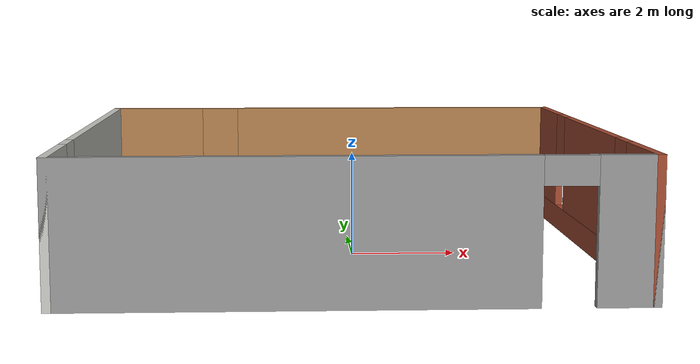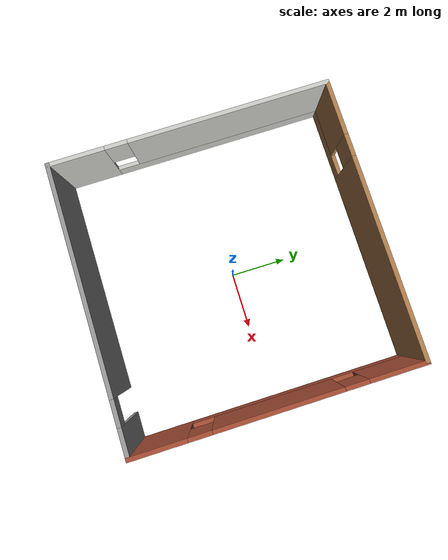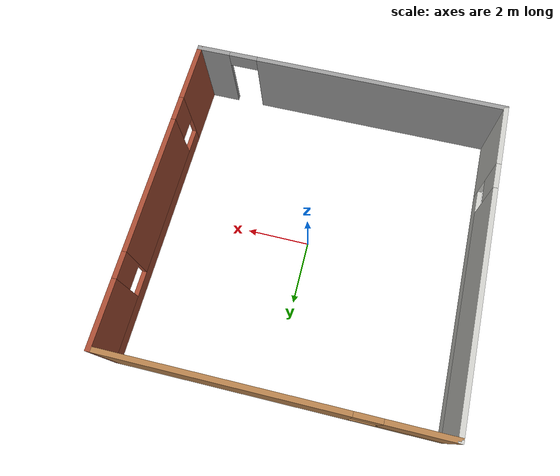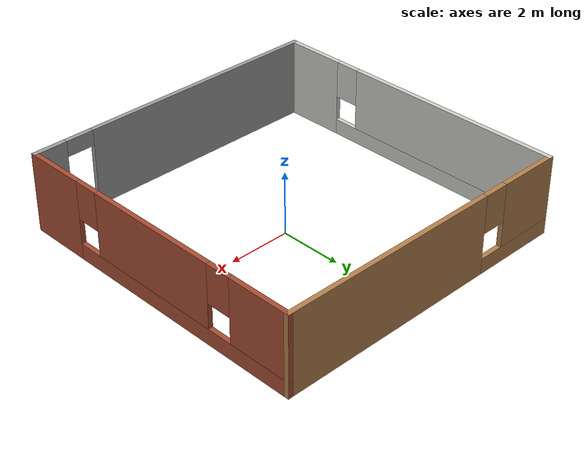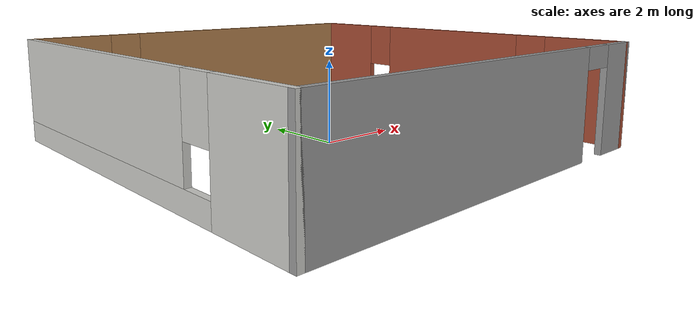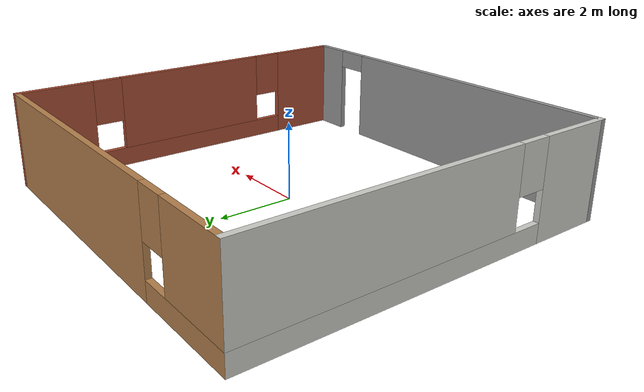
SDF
<?xml version='1.0'?>
<sdf version='1.6'>
  <model name='10_10_pattern_test'>
    <pose frame=''>-0.204369 0.054081 0 0 -0 0</pose>
    <link name='Wall_3'>
      <pose frame=''>-4.925 0 0 0 -0 1.5708</pose>
      <visual name='Wall_3_Visual_0'>
        <pose frame=''>-3.98071 0 1.25 0 -0 0</pose>
        <geometry>
          <box>
            <size>2.03858 0.15 2.5</size>
          </box>
        </geometry>
        <material>
          <script>
            <uri>file://media/materials/scripts/gazebo.material</uri>
            <name>Gazebo/CeilingTiled</name>
          </script>
          <ambient>1 1 1 1</ambient>
        </material>
      </visual>
      <collision name='Wall_3_Collision_0'>
        <geometry>
          <box>
            <size>2.03858 0.15 2.5</size>
          </box>
        </geometry>
        <pose frame=''>-3.98071 0 1.25 0 -0 0</pose>
      </collision>
      <visual name='Wall_3_Visual_1'>
        <pose frame=''>1.01929 0 0.25 0 -0 0</pose>
        <geometry>
          <box>
            <size>7.96142 0.15 0.5</size>
          </box>
        </geometry>
        <material>
          <script>
            <uri>file://media/materials/scripts/gazebo.material</uri>
            <name>Gazebo/CeilingTiled</name>
          </script>
          <ambient>1 1 1 1</ambient>
        </material>
      </visual>
      <collision name='Wall_3_Collision_1'>
        <geometry>
          <box>
            <size>7.96142 0.15 0.5</size>
          </box>
        </geometry>
        <pose frame=''>1.01929 0 0.25 0 -0 0</pose>
      </collision>
      <visual name='Wall_3_Visual_2'>
        <pose frame=''>1.41929 0 1.5 0 -0 0</pose>
        <geometry>
          <box>
            <size>7.16142 0.15 2</size>
          </box>
        </geometry>
        <material>
          <script>
            <uri>file://media/materials/scripts/gazebo.material</uri>
            <name>Gazebo/CeilingTiled</name>
          </script>
          <ambient>1 1 1 1</ambient>
        </material>
      </visual>
      <collision name='Wall_3_Collision_2'>
        <geometry>
          <box>
            <size>7.16142 0.15 2</size>
          </box>
        </geometry>
        <pose frame=''>1.41929 0 1.5 0 -0 0</pose>
      </collision>
      <visual name='Wall_3_Visual_3'>
        <pose frame=''>-2.56142 0 1.9 0 -0 0</pose>
        <geometry>
          <box>
            <size>0.8 0.15 1.2</size>
          </box>
        </geometry>
        <material>
          <script>
            <uri>file://media/materials/scripts/gazebo.material</uri>
            <name>Gazebo/CeilingTiled</name>
          </script>
          <ambient>1 1 1 1</ambient>
        </material>
      </visual>
      <collision name='Wall_3_Collision_3'>
        <geometry>
          <box>
            <size>0.8 0.15 1.2</size>
          </box>
        </geometry>
        <pose frame=''>-2.56142 0 1.9 0 -0 0</pose>
      </collision>
    </link>
    <link name='Wall_5'>
      <pose frame=''>0 -4.925 0 0 -0 0</pose>
      <visual name='Wall_5_Visual_0'>
        <pose frame=''>-0.986022 0 1.25 0 -0 0</pose>
        <geometry>
          <box>
            <size>8.02796 0.15 2.5</size>
          </box>
        </geometry>
        <material>
          <script>
            <uri>file://media/materials/scripts/gazebo.material</uri>
            <name>Gazebo/Grey</name>
          </script>
          <ambient>1 1 1 1</ambient>
        </material>
      </visual>
      <collision name='Wall_5_Collision_0'>
        <geometry>
          <box>
            <size>8.02796 0.15 2.5</size>
          </box>
        </geometry>
        <pose frame=''>-0.986022 0 1.25 0 -0 0</pose>
      </collision>
      <visual name='Wall_5_Visual_1'>
        <pose frame=''>4.46398 0 1.25 0 -0 0</pose>
        <geometry>
          <box>
            <size>1.07204 0.15 2.5</size>
          </box>
        </geometry>
        <material>
          <script>
            <uri>file://media/materials/scripts/gazebo.material</uri>
            <name>Gazebo/Grey</name>
          </script>
          <ambient>1 1 1 1</ambient>
        </material>
      </visual>
      <collision name='Wall_5_Collision_1'>
        <geometry>
          <box>
            <size>1.07204 0.15 2.5</size>
          </box>
        </geometry>
        <pose frame=''>4.46398 0 1.25 0 -0 0</pose>
      </collision>
      <visual name='Wall_5_Visual_2'>
        <pose frame=''>3.47796 0 2.25 0 -0 0</pose>
        <geometry>
          <box>
            <size>0.9 0.15 0.5</size>
          </box>
        </geometry>
        <material>
          <script>
            <uri>file://media/materials/scripts/gazebo.material</uri>
            <name>Gazebo/Grey</name>
          </script>
          <ambient>1 1 1 1</ambient>
        </material>
      </visual>
      <collision name='Wall_5_Collision_2'>
        <geometry>
          <box>
            <size>0.9 0.15 0.5</size>
          </box>
        </geometry>
        <pose frame=''>3.47796 0 2.25 0 -0 0</pose>
      </collision>
    </link>
    <link name='Wall_6'>
      <pose frame=''>4.925 0 0 0 -0 1.5708</pose>
      <visual name='Wall_6_Visual_0'>
        <pose frame=''>-4.00082 0 1.25 0 -0 0</pose>
        <geometry>
          <box>
            <size>1.99836 0.15 2.5</size>
          </box>
        </geometry>
        <material>
          <script>
            <uri>file://media/materials/scripts/gazebo.material</uri>
            <name>Gazebo/Bricks</name>
          </script>
          <ambient>1 1 1 1</ambient>
        </material>
      </visual>
      <collision name='Wall_6_Collision_0'>
        <geometry>
          <box>
            <size>1.99836 0.15 2.5</size>
          </box>
        </geometry>
        <pose frame=''>-4.00082 0 1.25 0 -0 0</pose>
      </collision>
      <visual name='Wall_6_Visual_1'>
        <pose frame=''>0.999178 0 0.25 0 -0 0</pose>
        <geometry>
          <box>
            <size>8.00164 0.15 0.5</size>
          </box>
        </geometry>
        <material>
          <script>
            <uri>file://media/materials/scripts/gazebo.material</uri>
            <name>Gazebo/Bricks</name>
          </script>
          <ambient>1 1 1 1</ambient>
        </material>
      </visual>
      <collision name='Wall_6_Collision_1'>
        <geometry>
          <box>
            <size>8.00164 0.15 0.5</size>
          </box>
        </geometry>
        <pose frame=''>0.999178 0 0.25 0 -0 0</pose>
      </collision>
      <visual name='Wall_6_Visual_2'>
        <pose frame=''>-0.01705 0 1.5 0 -0 0</pose>
        <geometry>
          <box>
            <size>4.36919 0.15 2</size>
          </box>
        </geometry>
        <material>
          <script>
            <uri>file://media/materials/scripts/gazebo.material</uri>
            <name>Gazebo/Bricks</name>
          </script>
          <ambient>1 1 1 1</ambient>
        </material>
      </visual>
      <collision name='Wall_6_Collision_2'>
        <geometry>
          <box>
            <size>4.36919 0.15 2</size>
          </box>
        </geometry>
        <pose frame=''>-0.01705 0 1.5 0 -0 0</pose>
      </collision>
      <visual name='Wall_6_Visual_3'>
        <pose frame=''>3.98377 0 1.5 0 -0 0</pose>
        <geometry>
          <box>
            <size>2.03246 0.15 2</size>
          </box>
        </geometry>
        <material>
          <script>
            <uri>file://media/materials/scripts/gazebo.material</uri>
            <name>Gazebo/Bricks</name>
          </script>
          <ambient>1 1 1 1</ambient>
        </material>
      </visual>
      <collision name='Wall_6_Collision_3'>
        <geometry>
          <box>
            <size>2.03246 0.15 2</size>
          </box>
        </geometry>
        <pose frame=''>3.98377 0 1.5 0 -0 0</pose>
      </collision>
      <visual name='Wall_6_Visual_4'>
        <pose frame=''>-2.60164 0 1.9 0 -0 0</pose>
        <geometry>
          <box>
            <size>0.8 0.15 1.2</size>
          </box>
        </geometry>
        <material>
          <script>
            <uri>file://media/materials/scripts/gazebo.material</uri>
            <name>Gazebo/Bricks</name>
          </script>
          <ambient>1 1 1 1</ambient>
        </material>
      </visual>
      <collision name='Wall_6_Collision_4'>
        <geometry>
          <box>
            <size>0.8 0.15 1.2</size>
          </box>
        </geometry>
        <pose frame=''>-2.60164 0 1.9 0 -0 0</pose>
      </collision>
      <visual name='Wall_6_Visual_5'>
        <pose frame=''>2.56754 0 1.9 0 -0 0</pose>
        <geometry>
          <box>
            <size>0.8 0.15 1.2</size>
          </box>
        </geometry>
        <material>
          <script>
            <uri>file://media/materials/scripts/gazebo.material</uri>
            <name>Gazebo/Bricks</name>
          </script>
          <ambient>1 1 1 1</ambient>
        </material>
      </visual>
      <collision name='Wall_6_Collision_5'>
        <geometry>
          <box>
            <size>0.8 0.15 1.2</size>
          </box>
        </geometry>
        <pose frame=''>2.56754 0 1.9 0 -0 0</pose>
      </collision>
    </link>
    <link name='Wall_7'>
      <pose frame=''>0 4.925 0 0 -0 3.14159</pose>
      <visual name='Wall_7_Visual_0'>
        <pose frame=''>-1.41189 0 1.25 0 -0 0</pose>
        <geometry>
          <box>
            <size>7.17623 0.15 2.5</size>
          </box>
        </geometry>
        <material>
          <script>
            <uri>file://media/materials/scripts/gazebo.material</uri>
            <name>Gazebo/Wood</name>
          </script>
          <ambient>1 1 1 1</ambient>
        </material>
      </visual>
      <collision name='Wall_7_Collision_0'>
        <geometry>
          <box>
            <size>7.17623 0.15 2.5</size>
          </box>
        </geometry>
        <pose frame=''>-1.41189 0 1.25 0 -0 0</pose>
      </collision>
      <visual name='Wall_7_Visual_1'>
        <pose frame=''>3.58811 0 0.25 0 -0 0</pose>
        <geometry>
          <box>
            <size>2.82377 0.15 0.5</size>
          </box>
        </geometry>
        <material>
          <script>
            <uri>file://media/materials/scripts/gazebo.material</uri>
            <name>Gazebo/Wood</name>
          </script>
          <ambient>1 1 1 1</ambient>
        </material>
      </visual>
      <collision name='Wall_7_Collision_1'>
        <geometry>
          <box>
            <size>2.82377 0.15 0.5</size>
          </box>
        </geometry>
        <pose frame=''>3.58811 0 0.25 0 -0 0</pose>
      </collision>
      <visual name='Wall_7_Visual_2'>
        <pose frame=''>3.98811 0 1.5 0 -0 0</pose>
        <geometry>
          <box>
            <size>2.02377 0.15 2</size>
          </box>
        </geometry>
        <material>
          <script>
            <uri>file://media/materials/scripts/gazebo.material</uri>
            <name>Gazebo/Wood</name>
          </script>
          <ambient>1 1 1 1</ambient>
        </material>
      </visual>
      <collision name='Wall_7_Collision_2'>
        <geometry>
          <box>
            <size>2.02377 0.15 2</size>
          </box>
        </geometry>
        <pose frame=''>3.98811 0 1.5 0 -0 0</pose>
      </collision>
      <visual name='Wall_7_Visual_3'>
        <pose frame=''>2.57623 0 1.9 0 -0 0</pose>
        <geometry>
          <box>
            <size>0.8 0.15 1.2</size>
          </box>
        </geometry>
        <material>
          <script>
            <uri>file://media/materials/scripts/gazebo.material</uri>
            <name>Gazebo/Wood</name>
          </script>
          <ambient>1 1 1 1</ambient>
        </material>
      </visual>
      <collision name='Wall_7_Collision_3'>
        <geometry>
          <box>
            <size>0.8 0.15 1.2</size>
          </box>
        </geometry>
        <pose frame=''>2.57623 0 1.9 0 -0 0</pose>
      </collision>
    </link>
    <static>1</static>
  </model>
</sdf>
